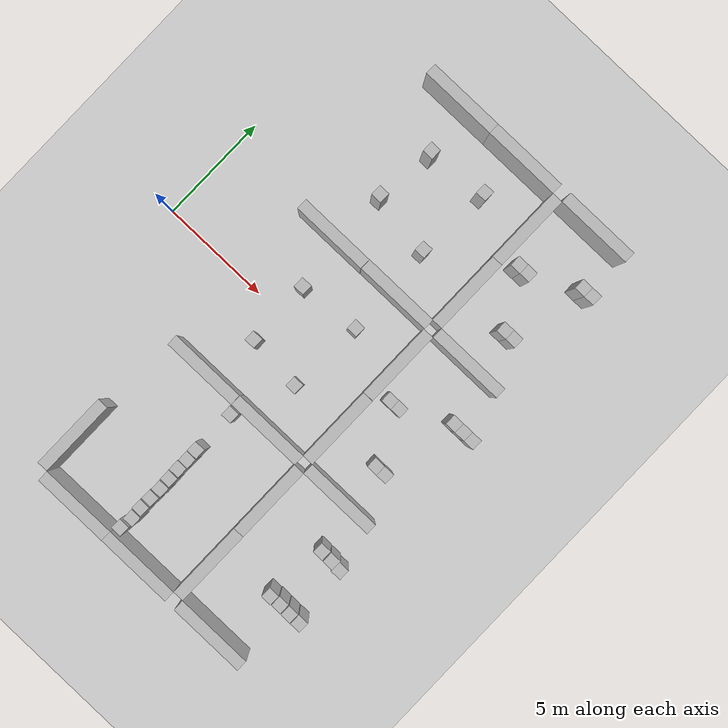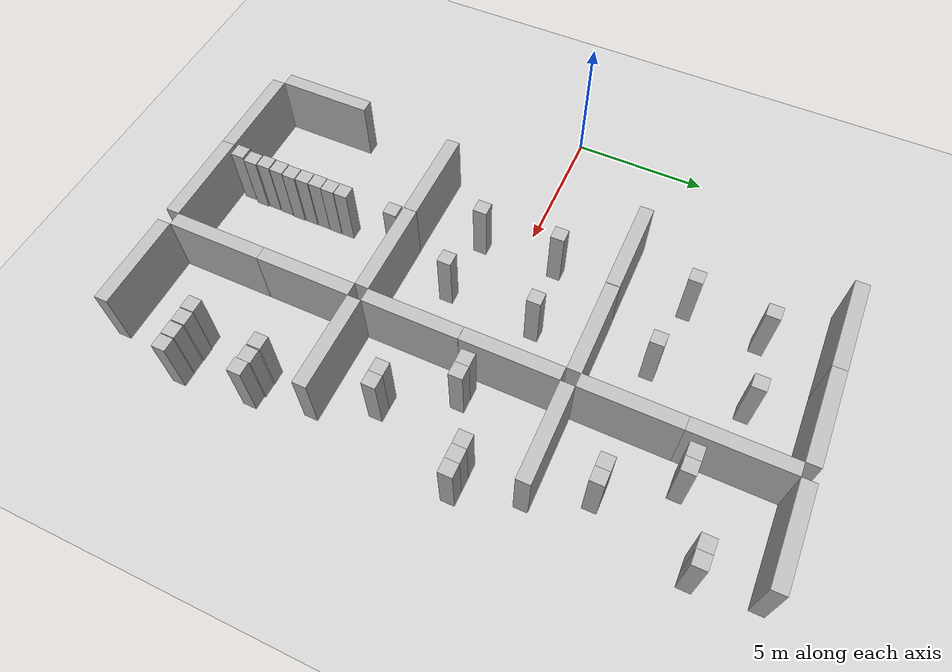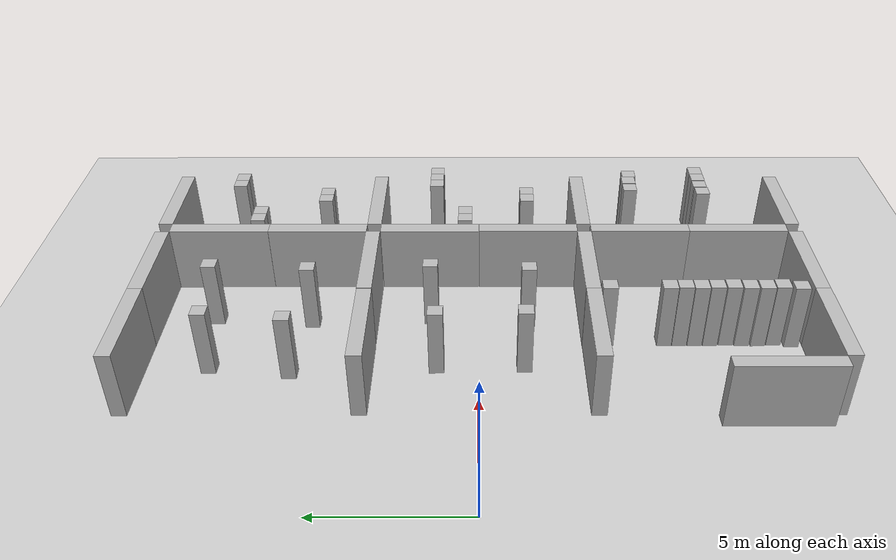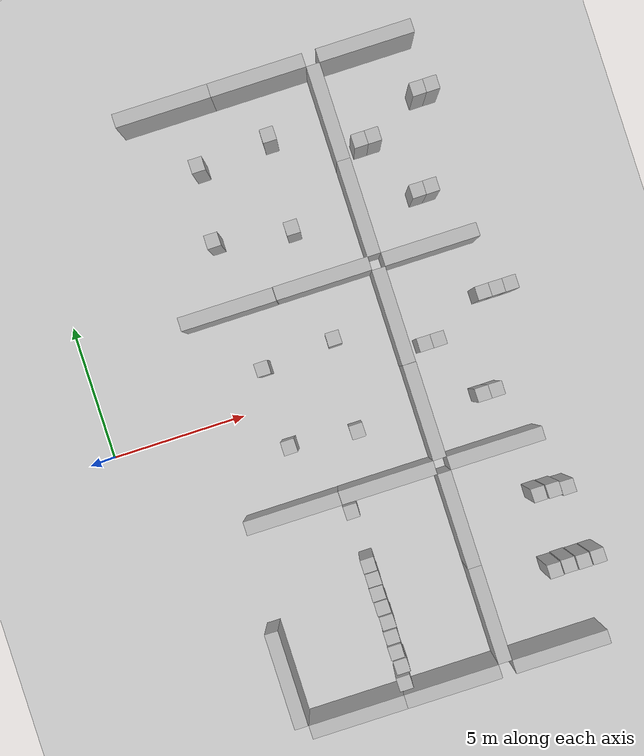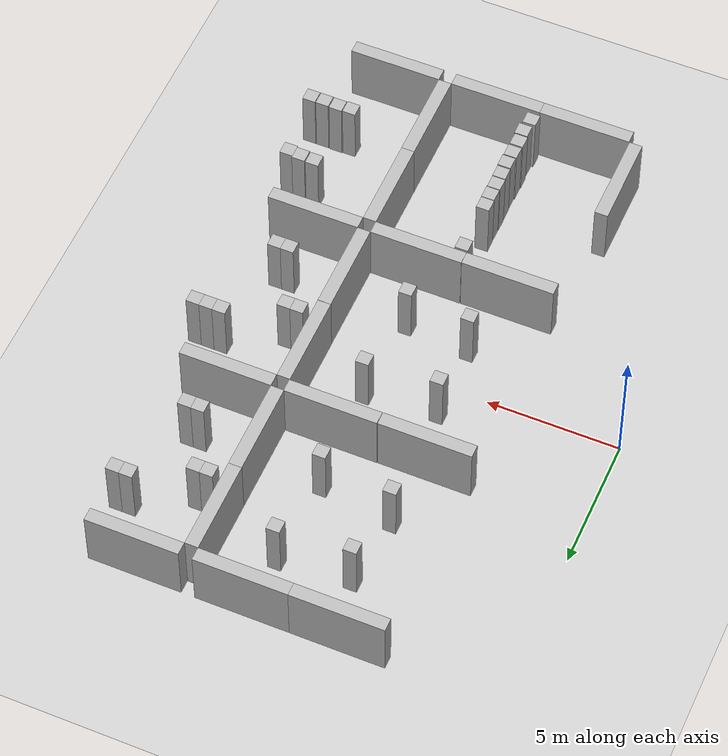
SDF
<sdf version="1.6">
 <world name="default">
  <model name="ground_plane">
   <static>1</static>
   <link name="link">
    <collision name="collision">
     <geometry><plane><normal>0 0 1</normal><size>100 100</size></plane></geometry>
     <surface><friction><ode><mu>100</mu><mu2>50</mu2></ode></friction></surface>
    </collision>
    <visual name="visual">
     <cast_shadows>0</cast_shadows>
     <geometry><plane><normal>0 0 1</normal><size>100 100</size></plane></geometry>
     <material>
      <script><uri>file://media/materials/scripts/gazebo.material</uri><name>Gazebo/Grey</name></script>
     </material>
    </visual>
   </link>
  </model>
  <model name="mywall0_4_clone_0_clone">
   <static>1</static>
   <link name="link">
    <pose>0 0 1.4 0 -0 0</pose>
    <collision name="collision"><geometry><box><size>3.5 0.5 2.4</size></box></geometry></collision>
    <visual name="visual">
     <cast_shadows>0</cast_shadows>
     <geometry><box><size>3.5 0.5 2.4</size></box></geometry>
     <material>
      <script>
       <uri>model://mywall0/materials/scripts</uri>
       <uri>model://mywall0/materials/textures</uri>
       <name>vrc/mywall0</name>
      </script>
     </material>
    </visual>
   </link>
   <pose>11.25 1.75 0 0 -0 1.57</pose>
  </model>
  <model name="mywall0_1_clone">
   <static>1</static>
   <link name="link">
    <pose>0 0 1.4 0 -0 0</pose>
    <collision name="collision"><geometry><box><size>3.5 0.5 2.4</size></box></geometry></collision>
    <visual name="visual">
     <cast_shadows>0</cast_shadows>
     <geometry><box><size>3.5 0.5 2.4</size></box></geometry>
     <material>
      <script>
       <uri>model://mywall0/materials/scripts</uri>
       <uri>model://mywall0/materials/textures</uri>
       <name>vrc/mywall0</name>
      </script>
     </material>
    </visual>
   </link>
   <pose>5.7511 3.75831 0 0 -0 0</pose>
  </model>
  <model name="mywall0_1_clone_0">
   <static>1</static>
   <link name="link">
    <pose>0 0 1.4 0 -0 0</pose>
    <collision name="collision"><geometry><box><size>3.5 0.5 2.4</size></box></geometry></collision>
    <visual name="visual">
     <cast_shadows>0</cast_shadows>
     <geometry><box><size>3.5 0.5 2.4</size></box></geometry>
     <material>
      <script>
       <uri>model://mywall0/materials/scripts</uri>
       <uri>model://mywall0/materials/textures</uri>
       <name>vrc/mywall0</name>
      </script>
     </material>
    </visual>
   </link>
   <pose>9.26518 3.76712 0 0 -0 0</pose>
  </model>
  <model name="mywall0_4_clone_0_clone_clone">
   <static>1</static>
   <link name="link">
    <pose>0 0 1.4 0 -0 0</pose>
    <collision name="collision"><geometry><box><size>3.5 0.5 2.4</size></box></geometry></collision>
    <visual name="visual">
     <cast_shadows>0</cast_shadows>
     <geometry><box><size>3.5 0.5 2.4</size></box></geometry>
     <material>
      <script>
       <uri>model://mywall0/materials/scripts</uri>
       <uri>model://mywall0/materials/textures</uri>
       <name>vrc/mywall0</name>
      </script>
     </material>
    </visual>
   </link>
   <pose>11.2541 -1.75467 0 0 -0 1.57</pose>
  </model>
  <model name="mywall0_3_clone">
   <static>1</static>
   <link name="link">
    <pose>0 0 1.4 0 -0 0</pose>
    <collision name="collision"><geometry><box><size>3.5 0.5 2.4</size></box></geometry></collision>
    <visual name="visual">
     <cast_shadows>0</cast_shadows>
     <geometry><box><size>3.5 0.5 2.4</size></box></geometry>
     <material>
      <script>
       <uri>model://mywall0/materials/scripts</uri>
       <uri>model://mywall0/materials/textures</uri>
       <name>vrc/mywall0</name>
      </script>
     </material>
    </visual>
   </link>
   <pose>5.75 -3.75829 0 0 -0 0</pose>
  </model>
  <model name="mywall0_3_clone_0">
   <static>1</static>
   <link name="link">
    <pose>0 0 1.4 0 -0 0</pose>
    <collision name="collision"><geometry><box><size>3.5 0.5 2.4</size></box></geometry></collision>
    <visual name="visual">
     <cast_shadows>0</cast_shadows>
     <geometry><box><size>3.5 0.5 2.4</size></box></geometry>
     <material>
      <script>
       <uri>model://mywall0/materials/scripts</uri>
       <uri>model://mywall0/materials/textures</uri>
       <name>vrc/mywall0</name>
      </script>
     </material>
    </visual>
   </link>
   <pose>9.25625 -3.75 0 0 -0 0</pose>
  </model>
  <model name="mywall0_1_clone_1">
   <static>1</static>
   <link name="link">
    <pose>0 0 1.4 0 -0 0</pose>
    <collision name="collision"><geometry><box><size>3.5 0.5 2.4</size></box></geometry></collision>
    <visual name="visual">
     <cast_shadows>0</cast_shadows>
     <geometry><box><size>3.5 0.5 2.4</size></box></geometry>
     <material>
      <script>
       <uri>model://mywall0/materials/scripts</uri>
       <uri>model://mywall0/materials/textures</uri>
       <name>vrc/mywall0</name>
      </script>
     </material>
    </visual>
   </link>
   <pose>13.25 3.75 0 0 -0 0</pose>
  </model>
  <model name="mywall0_1_clone_1_clone">
   <static>1</static>
   <link name="link">
    <pose>0 0 1.4 0 -0 0</pose>
    <collision name="collision"><geometry><box><size>3.5 0.5 2.4</size></box></geometry></collision>
    <visual name="visual">
     <cast_shadows>0</cast_shadows>
     <geometry><box><size>3.5 0.5 2.4</size></box></geometry>
     <material>
      <script>
       <uri>model://mywall0/materials/scripts</uri>
       <uri>model://mywall0/materials/textures</uri>
       <name>vrc/mywall0</name>
      </script>
     </material>
    </visual>
   </link>
   <pose>13.25 -3.75 0 0 -0 0</pose>
  </model>
  <model name="mywall0_4_clone_0_clone_clone_0_clone_6">
   <static>1</static>
   <link name="link">
    <pose>0 0 1.4 0 -0 0</pose>
    <collision name="collision"><geometry><box><size>3.5 0.5 2.4</size></box></geometry></collision>
    <visual name="visual">
     <cast_shadows>0</cast_shadows>
     <geometry><box><size>3.5 0.5 2.4</size></box></geometry>
     <material>
      <script>
       <uri>model://mywall0/materials/scripts</uri>
       <uri>model://mywall0/materials/textures</uri>
       <name>vrc/mywall0</name>
      </script>
     </material>
    </visual>
   </link>
   <pose>11.25 5.75 0 0 -0 1.57</pose>
  </model>
  <model name="mywall0_4_clone_0_clone_clone_0_clone_7">
   <static>1</static>
   <link name="link">
    <pose>0 0 1.4 0 -0 0</pose>
    <collision name="collision"><geometry><box><size>3.5 0.5 2.4</size></box></geometry></collision>
    <visual name="visual">
     <cast_shadows>0</cast_shadows>
     <geometry><box><size>3.5 0.5 2.4</size></box></geometry>
     <material>
      <script>
       <uri>model://mywall0/materials/scripts</uri>
       <uri>model://mywall0/materials/textures</uri>
       <name>vrc/mywall0</name>
      </script>
     </material>
    </visual>
   </link>
   <pose>11.25 9.25 0 0 -0 1.57</pose>
  </model>
  <model name="mywall0_1_clone_1_clone_3_clone_2">
   <static>1</static>
   <link name="link">
    <pose>0 0 1.4 0 -0 0</pose>
    <collision name="collision"><geometry><box><size>3.5 0.5 2.4</size></box></geometry></collision>
    <visual name="visual">
     <cast_shadows>0</cast_shadows>
     <geometry><box><size>3.5 0.5 2.4</size></box></geometry>
     <material>
      <script>
       <uri>model://mywall0/materials/scripts</uri>
       <uri>model://mywall0/materials/textures</uri>
       <name>vrc/mywall0</name>
      </script>
     </material>
    </visual>
   </link>
   <pose>13.25 11.25 0 0 -0 0</pose>
  </model>
  <model name="mywall0_1_clone_1_clone_3_clone_3">
   <static>1</static>
   <link name="link">
    <pose>0 0 1.4 0 -0 0</pose>
    <collision name="collision"><geometry><box><size>3.5 0.5 2.4</size></box></geometry></collision>
    <visual name="visual">
     <cast_shadows>0</cast_shadows>
     <geometry><box><size>3.5 0.5 2.4</size></box></geometry>
     <material>
      <script>
       <uri>model://mywall0/materials/scripts</uri>
       <uri>model://mywall0/materials/textures</uri>
       <name>vrc/mywall0</name>
      </script>
     </material>
    </visual>
   </link>
   <pose>9.25 11.25 0 0 -0 0</pose>
  </model>
  <model name="mywall0_1_clone_1_clone_3_clone_4">
   <static>1</static>
   <link name="link">
    <pose>0 0 1.4 0 -0 0</pose>
    <collision name="collision"><geometry><box><size>3.5 0.5 2.4</size></box></geometry></collision>
    <visual name="visual">
     <cast_shadows>0</cast_shadows>
     <geometry><box><size>3.5 0.5 2.4</size></box></geometry>
     <material>
      <script>
       <uri>model://mywall0/materials/scripts</uri>
       <uri>model://mywall0/materials/textures</uri>
       <name>vrc/mywall0</name>
      </script>
     </material>
    </visual>
   </link>
   <pose>5.75 11.25 0 0 -0 0</pose>
  </model>
  <model name="mypillar">
   <static>1</static>
   <link name="link">
    <pose>0 0 1.4 0 -0 0</pose>
    <collision name="collision"><geometry><box><size>0.5 0.5 2.4</size></box></geometry></collision>
    <visual name="visual">
     <cast_shadows>0</cast_shadows>
     <geometry><box><size>0.5 0.5 2.4</size></box></geometry>
     <material>
      <script>
       <uri>model://mypillar/materials/scripts</uri>
       <uri>model://mypillar/materials/textures</uri>
       <name>vrc/mypillar</name>
      </script>
     </material>
    </visual>
   </link>
   <pose>6.3 1.4 0 0 -0 0</pose>
  </model>
  <model name="mypillar_0">
   <static>1</static>
   <link name="link">
    <pose>0 0 1.4 0 -0 0</pose>
    <collision name="collision"><geometry><box><size>0.5 0.5 2.4</size></box></geometry></collision>
    <visual name="visual">
     <cast_shadows>0</cast_shadows>
     <geometry><box><size>0.5 0.5 2.4</size></box></geometry>
     <material>
      <script>
       <uri>model://mypillar/materials/scripts</uri>
       <uri>model://mypillar/materials/textures</uri>
       <name>vrc/mypillar</name>
      </script>
     </material>
    </visual>
   </link>
   <pose>8.8 -1.7 0 0 -0 0</pose>
  </model>
  <model name="mypillar_1">
   <static>1</static>
   <link name="link">
    <pose>0 0 1.4 0 -0 0</pose>
    <collision name="collision"><geometry><box><size>0.5 0.5 2.4</size></box></geometry></collision>
    <visual name="visual">
     <cast_shadows>0</cast_shadows>
     <geometry><box><size>0.5 0.5 2.4</size></box></geometry>
     <material>
      <script>
       <uri>model://mypillar/materials/scripts</uri>
       <uri>model://mypillar/materials/textures</uri>
       <name>vrc/mypillar</name>
      </script>
     </material>
    </visual>
   </link>
   <pose>9 1.65 0 0 -0 0</pose>
  </model>
  <model name="mypillar_clone">
   <static>1</static>
   <link name="link">
    <pose>0 0 1.4 0 -0 0</pose>
    <collision name="collision"><geometry><box><size>0.5 0.5 2.4</size></box></geometry></collision>
    <visual name="visual">
     <cast_shadows>0</cast_shadows>
     <geometry><box><size>0.5 0.5 2.4</size></box></geometry>
     <material>
      <script>
       <uri>model://mypillar/materials/scripts</uri>
       <uri>model://mypillar/materials/textures</uri>
       <name>vrc/mypillar</name>
      </script>
     </material>
    </visual>
   </link>
   <pose>6.35 -1.5 0 0 -0 0</pose>
  </model>
  <model name="mypillar_1_clone_clone">
   <static>1</static>
   <link name="link">
    <pose>0 0 1.4 0 -0 0</pose>
    <collision name="collision"><geometry><box><size>0.5 0.5 2.4</size></box></geometry></collision>
    <visual name="visual">
     <cast_shadows>0</cast_shadows>
     <geometry><box><size>0.5 0.5 2.4</size></box></geometry>
     <material>
      <script>
       <uri>model://mypillar/materials/scripts</uri>
       <uri>model://mypillar/materials/textures</uri>
       <name>vrc/mypillar</name>
      </script>
     </material>
    </visual>
   </link>
   <pose>15 1.6 0 0 -0 0</pose>
  </model>
  <model name="mypillar_1_clone_clone_0">
   <static>1</static>
   <link name="link">
    <pose>0 0 1.4 0 -0 0</pose>
    <collision name="collision"><geometry><box><size>0.5 0.5 2.4</size></box></geometry></collision>
    <visual name="visual">
     <cast_shadows>0</cast_shadows>
     <geometry><box><size>0.5 0.5 2.4</size></box></geometry>
     <material>
      <script>
       <uri>model://mypillar/materials/scripts</uri>
       <uri>model://mypillar/materials/textures</uri>
       <name>vrc/mypillar</name>
      </script>
     </material>
    </visual>
   </link>
   <pose>15.5 1.6 0 0 -0 0</pose>
  </model>
  <model name="mypillar_1_clone_clone_1">
   <static>1</static>
   <link name="link">
    <pose>0 0 1.4 0 -0 0</pose>
    <collision name="collision"><geometry><box><size>0.5 0.5 2.4</size></box></geometry></collision>
    <visual name="visual">
     <cast_shadows>0</cast_shadows>
     <geometry><box><size>0.5 0.5 2.4</size></box></geometry>
     <material>
      <script>
       <uri>model://mypillar/materials/scripts</uri>
       <uri>model://mypillar/materials/textures</uri>
       <name>vrc/mypillar</name>
      </script>
     </material>
    </visual>
   </link>
   <pose>14.5 1.6 0 0 -0 0</pose>
  </model>
  <model name="mypillar_1_clone_clone_2">
   <static>1</static>
   <link name="link">
    <pose>0 0 1.4 0 -0 0</pose>
    <collision name="collision"><geometry><box><size>0.5 0.5 2.4</size></box></geometry></collision>
    <visual name="visual">
     <cast_shadows>0</cast_shadows>
     <geometry><box><size>0.5 0.5 2.4</size></box></geometry>
     <material>
      <script>
       <uri>model://mypillar/materials/scripts</uri>
       <uri>model://mypillar/materials/textures</uri>
       <name>vrc/mypillar</name>
      </script>
     </material>
    </visual>
   </link>
   <pose>13.4 -1.8 0 0 -0 0</pose>
  </model>
  <model name="mypillar_1_clone_clone_3">
   <static>1</static>
   <link name="link">
    <pose>0 0 1.4 0 -0 0</pose>
    <collision name="collision"><geometry><box><size>0.5 0.5 2.4</size></box></geometry></collision>
    <visual name="visual">
     <cast_shadows>0</cast_shadows>
     <geometry><box><size>0.5 0.5 2.4</size></box></geometry>
     <material>
      <script>
       <uri>model://mypillar/materials/scripts</uri>
       <uri>model://mypillar/materials/textures</uri>
       <name>vrc/mypillar</name>
      </script>
     </material>
    </visual>
   </link>
   <pose>13.9 -1.8 0 0 -0 0</pose>
  </model>
  <model name="mypillar_1_clone_clone_4_clone_2">
   <static>1</static>
   <link name="link">
    <pose>0 0 1.4 0 -0 0</pose>
    <collision name="collision"><geometry><box><size>0.5 0.5 2.4</size></box></geometry></collision>
    <visual name="visual">
     <cast_shadows>0</cast_shadows>
     <geometry><box><size>0.5 0.5 2.4</size></box></geometry>
     <material>
      <script>
       <uri>model://mypillar/materials/scripts</uri>
       <uri>model://mypillar/materials/textures</uri>
       <name>vrc/mypillar</name>
      </script>
     </material>
    </visual>
   </link>
   <pose>12 0.5 0 0 -0 0</pose>
  </model>
  <model name="mypillar_1_clone_clone_4_clone_3">
   <static>1</static>
   <link name="link">
    <pose>0 0 1.4 0 -0 0</pose>
    <collision name="collision"><geometry><box><size>0.5 0.5 2.4</size></box></geometry></collision>
    <visual name="visual">
     <cast_shadows>0</cast_shadows>
     <geometry><box><size>0.5 0.5 2.4</size></box></geometry>
     <material>
      <script>
       <uri>model://mypillar/materials/scripts</uri>
       <uri>model://mypillar/materials/textures</uri>
       <name>vrc/mypillar</name>
      </script>
     </material>
    </visual>
   </link>
   <pose>12.5 0.5 0 0 -0 0</pose>
  </model>
  <model name="mypillar_clone_0_clone_1_clone">
   <static>1</static>
   <link name="link">
    <pose>0 0 1.4 0 -0 0</pose>
    <collision name="collision"><geometry><box><size>0.5 0.5 2.4</size></box></geometry></collision>
    <visual name="visual">
     <cast_shadows>0</cast_shadows>
     <geometry><box><size>0.5 0.5 2.4</size></box></geometry>
     <material>
      <script>
       <uri>model://mypillar/materials/scripts</uri>
       <uri>model://mypillar/materials/textures</uri>
       <name>vrc/mypillar</name>
      </script>
     </material>
    </visual>
   </link>
   <pose>6.3 8.9 0 0 -0 0</pose>
  </model>
  <model name="mypillar_clone_0_clone_1_clone_0">
   <static>1</static>
   <link name="link">
    <pose>0 0 1.4 0 -0 0</pose>
    <collision name="collision"><geometry><box><size>0.5 0.5 2.4</size></box></geometry></collision>
    <visual name="visual">
     <cast_shadows>0</cast_shadows>
     <geometry><box><size>0.5 0.5 2.4</size></box></geometry>
     <material>
      <script>
       <uri>model://mypillar/materials/scripts</uri>
       <uri>model://mypillar/materials/textures</uri>
       <name>vrc/mypillar</name>
      </script>
     </material>
    </visual>
   </link>
   <pose>6.00869 6.21238 0 0 -0 0</pose>
  </model>
  <model name="mypillar_clone_0_clone_1_clone_1">
   <static>1</static>
   <link name="link">
    <pose>0 0 1.4 0 -0 0</pose>
    <collision name="collision"><geometry><box><size>0.5 0.5 2.4</size></box></geometry></collision>
    <visual name="visual">
     <cast_shadows>0</cast_shadows>
     <geometry><box><size>0.5 0.5 2.4</size></box></geometry>
     <material>
      <script>
       <uri>model://mypillar/materials/scripts</uri>
       <uri>model://mypillar/materials/textures</uri>
       <name>vrc/mypillar</name>
      </script>
     </material>
    </visual>
   </link>
   <pose>9 9.15 0 0 -0 0</pose>
  </model>
  <model name="mypillar_clone_0_clone_1_clone_2">
   <static>1</static>
   <link name="link">
    <pose>0 0 1.4 0 -0 0</pose>
    <collision name="collision"><geometry><box><size>0.5 0.5 2.4</size></box></geometry></collision>
    <visual name="visual">
     <cast_shadows>0</cast_shadows>
     <geometry><box><size>0.5 0.5 2.4</size></box></geometry>
     <material>
      <script>
       <uri>model://mypillar/materials/scripts</uri>
       <uri>model://mypillar/materials/textures</uri>
       <name>vrc/mypillar</name>
      </script>
     </material>
    </visual>
   </link>
   <pose>8.8 5.8 0 0 -0 0</pose>
  </model>
  <model name="mypillar_1_clone_clone_4_clone_2_clone">
   <static>1</static>
   <link name="link">
    <pose>0 0 1.4 0 -0 0</pose>
    <collision name="collision"><geometry><box><size>0.5 0.5 2.4</size></box></geometry></collision>
    <visual name="visual">
     <cast_shadows>0</cast_shadows>
     <geometry><box><size>0.5 0.5 2.4</size></box></geometry>
     <material>
      <script>
       <uri>model://mypillar/materials/scripts</uri>
       <uri>model://mypillar/materials/textures</uri>
       <name>vrc/mypillar</name>
      </script>
     </material>
    </visual>
   </link>
   <pose>12 8 0 0 -0 0</pose>
  </model>
  <model name="mypillar_1_clone_clone_4_clone_2_clone_0">
   <static>1</static>
   <link name="link">
    <pose>0 0 1.4 0 -0 0</pose>
    <collision name="collision"><geometry><box><size>0.5 0.5 2.4</size></box></geometry></collision>
    <visual name="visual">
     <cast_shadows>0</cast_shadows>
     <geometry><box><size>0.5 0.5 2.4</size></box></geometry>
     <material>
      <script>
       <uri>model://mypillar/materials/scripts</uri>
       <uri>model://mypillar/materials/textures</uri>
       <name>vrc/mypillar</name>
      </script>
     </material>
    </visual>
   </link>
   <pose>12.5 8 0 0 -0 0</pose>
  </model>
  <model name="mypillar_1_clone_clone_4_clone_2_clone_1">
   <static>1</static>
   <link name="link">
    <pose>0 0 1.4 0 -0 0</pose>
    <collision name="collision"><geometry><box><size>0.5 0.5 2.4</size></box></geometry></collision>
    <visual name="visual">
     <cast_shadows>0</cast_shadows>
     <geometry><box><size>0.5 0.5 2.4</size></box></geometry>
     <material>
      <script>
       <uri>model://mypillar/materials/scripts</uri>
       <uri>model://mypillar/materials/textures</uri>
       <name>vrc/mypillar</name>
      </script>
     </material>
    </visual>
   </link>
   <pose>14.5 9.1 0 0 -0 0</pose>
  </model>
  <model name="mypillar_1_clone_clone_4_clone_2_clone_2">
   <static>1</static>
   <link name="link">
    <pose>0 0 1.4 0 -0 0</pose>
    <collision name="collision"><geometry><box><size>0.5 0.5 2.4</size></box></geometry></collision>
    <visual name="visual">
     <cast_shadows>0</cast_shadows>
     <geometry><box><size>0.5 0.5 2.4</size></box></geometry>
     <material>
      <script>
       <uri>model://mypillar/materials/scripts</uri>
       <uri>model://mypillar/materials/textures</uri>
       <name>vrc/mypillar</name>
      </script>
     </material>
    </visual>
   </link>
   <pose>15 9.1 0 0 -0 0</pose>
  </model>
  <model name="mypillar_1_clone_clone_4_clone_2_clone_4">
   <static>1</static>
   <link name="link">
    <pose>0 0 1.4 0 -0 0</pose>
    <collision name="collision"><geometry><box><size>0.5 0.5 2.4</size></box></geometry></collision>
    <visual name="visual">
     <cast_shadows>0</cast_shadows>
     <geometry><box><size>0.5 0.5 2.4</size></box></geometry>
     <material>
      <script>
       <uri>model://mypillar/materials/scripts</uri>
       <uri>model://mypillar/materials/textures</uri>
       <name>vrc/mypillar</name>
      </script>
     </material>
    </visual>
   </link>
   <pose>13.4 5.7 0 0 -0 0</pose>
  </model>
  <model name="mypillar_1_clone_clone_4_clone_2_clone_5">
   <static>1</static>
   <link name="link">
    <pose>0 0 1.4 0 -0 0</pose>
    <collision name="collision"><geometry><box><size>0.5 0.5 2.4</size></box></geometry></collision>
    <visual name="visual">
     <cast_shadows>0</cast_shadows>
     <geometry><box><size>0.5 0.5 2.4</size></box></geometry>
     <material>
      <script>
       <uri>model://mypillar/materials/scripts</uri>
       <uri>model://mypillar/materials/textures</uri>
       <name>vrc/mypillar</name>
      </script>
     </material>
    </visual>
   </link>
   <pose>13.9 5.7 0 0 -0 0</pose>
  </model>
  <model name="mywall0_4_clone_1_clone_0">
   <static>1</static>
   <link name="link">
    <pose>0 0 1.4 0 -0 0</pose>
    <collision name="collision"><geometry><box><size>3.5 0.5 2.4</size></box></geometry></collision>
    <visual name="visual">
     <cast_shadows>0</cast_shadows>
     <geometry><box><size>3.5 0.5 2.4</size></box></geometry>
     <material>
      <script>
       <uri>model://mywall0/materials/scripts</uri>
       <uri>model://mywall0/materials/textures</uri>
       <name>vrc/mywall0</name>
      </script>
     </material>
    </visual>
   </link>
   <pose>3.75 -9.25 0 0 -0 1.57</pose>
  </model>
  <model name="mywall0_4_clone_1_clone_1">
   <static>1</static>
   <link name="link">
    <pose>0 0 1.4 0 -0 0</pose>
    <collision name="collision"><geometry><box><size>3.5 0.5 2.4</size></box></geometry></collision>
    <visual name="visual">
     <cast_shadows>0</cast_shadows>
     <geometry><box><size>3.5 0.5 2.4</size></box></geometry>
     <material>
      <script>
       <uri>model://mywall0/materials/scripts</uri>
       <uri>model://mywall0/materials/textures</uri>
       <name>vrc/mywall0</name>
      </script>
     </material>
    </visual>
   </link>
   <pose>11.25 -5.75 0 0 -0 1.57</pose>
  </model>
  <model name="mywall0_4_clone_1_clone_2">
   <static>1</static>
   <link name="link">
    <pose>0 0 1.4 0 -0 0</pose>
    <collision name="collision"><geometry><box><size>3.5 0.5 2.4</size></box></geometry></collision>
    <visual name="visual">
     <cast_shadows>0</cast_shadows>
     <geometry><box><size>3.5 0.5 2.4</size></box></geometry>
     <material>
      <script>
       <uri>model://mywall0/materials/scripts</uri>
       <uri>model://mywall0/materials/textures</uri>
       <name>vrc/mywall0</name>
      </script>
     </material>
    </visual>
   </link>
   <pose>11.25 -9.25 0 0 -0 1.57</pose>
  </model>
  <model name="mywall0_3_clone_0_clone">
   <static>1</static>
   <link name="link">
    <pose>0 0 1.4 0 -0 0</pose>
    <collision name="collision"><geometry><box><size>3.5 0.5 2.4</size></box></geometry></collision>
    <visual name="visual">
     <cast_shadows>0</cast_shadows>
     <geometry><box><size>3.5 0.5 2.4</size></box></geometry>
     <material>
      <script>
       <uri>model://mywall0/materials/scripts</uri>
       <uri>model://mywall0/materials/textures</uri>
       <name>vrc/mywall0</name>
      </script>
     </material>
    </visual>
   </link>
   <pose>5.7637 -11.25 0 0 -0 0</pose>
  </model>
  <model name="mywall0_3_clone_0_clone_0">
   <static>1</static>
   <link name="link">
    <pose>0 0 1.4 0 -0 0</pose>
    <collision name="collision"><geometry><box><size>3.5 0.5 2.4</size></box></geometry></collision>
    <visual name="visual">
     <cast_shadows>0</cast_shadows>
     <geometry><box><size>3.5 0.5 2.4</size></box></geometry>
     <material>
      <script>
       <uri>model://mywall0/materials/scripts</uri>
       <uri>model://mywall0/materials/textures</uri>
       <name>vrc/mywall0</name>
      </script>
     </material>
    </visual>
   </link>
   <pose>9.25 -11.25 0 0 -0 0</pose>
  </model>
  <model name="mywall0_3_clone_0_clone_0_clone">
   <static>1</static>
   <link name="link">
    <pose>0 0 1.4 0 -0 0</pose>
    <collision name="collision"><geometry><box><size>3.5 0.5 2.4</size></box></geometry></collision>
    <visual name="visual">
     <cast_shadows>0</cast_shadows>
     <geometry><box><size>3.5 0.5 2.4</size></box></geometry>
     <material>
      <script>
       <uri>model://mywall0/materials/scripts</uri>
       <uri>model://mywall0/materials/textures</uri>
       <name>vrc/mywall0</name>
      </script>
     </material>
    </visual>
   </link>
   <pose>13.25 -11.25 0 0 -0 0</pose>
  </model>
  <model name="mypillar_clone_clone_2_clone">
   <static>1</static>
   <link name="link">
    <pose>0 0 1.4 0 -0 0</pose>
    <collision name="collision"><geometry><box><size>0.5 0.5 2.4</size></box></geometry></collision>
    <visual name="visual">
     <cast_shadows>0</cast_shadows>
     <geometry><box><size>0.5 0.5 2.4</size></box></geometry>
     <material>
      <script>
       <uri>model://mypillar/materials/scripts</uri>
       <uri>model://mypillar/materials/textures</uri>
       <name>vrc/mypillar</name>
      </script>
     </material>
    </visual>
   </link>
   <pose>7.73456 -6.2969 0 0 -0 0</pose>
  </model>
  <model name="mypillar_clone_clone_2_clone_5">
   <static>1</static>
   <link name="link">
    <pose>0 0 1.4 0 -0 0</pose>
    <collision name="collision"><geometry><box><size>0.5 0.5 2.4</size></box></geometry></collision>
    <visual name="visual">
     <cast_shadows>0</cast_shadows>
     <geometry><box><size>0.5 0.5 2.4</size></box></geometry>
     <material>
      <script>
       <uri>model://mypillar/materials/scripts</uri>
       <uri>model://mypillar/materials/textures</uri>
       <name>vrc/mypillar</name>
      </script>
     </material>
    </visual>
   </link>
   <pose>15.2275 -5.81819 0 0 -0 0</pose>
  </model>
  <model name="mypillar_clone_clone_2_clone_11">
   <static>1</static>
   <link name="link">
    <pose>0 0 1.4 0 -0 0</pose>
    <collision name="collision"><geometry><box><size>0.5 0.5 2.4</size></box></geometry></collision>
    <visual name="visual">
     <cast_shadows>0</cast_shadows>
     <geometry><box><size>0.5 0.5 2.4</size></box></geometry>
     <material>
      <script>
       <uri>model://mypillar/materials/scripts</uri>
       <uri>model://mypillar/materials/textures</uri>
       <name>vrc/mypillar</name>
      </script>
     </material>
    </visual>
   </link>
   <pose>15.4965 -8.45455 0 0 -0 0</pose>
  </model>
  <model name="mypillar_clone_clone_2_clone_clone">
   <static>1</static>
   <link name="link">
    <pose>0 0 1.4 0 -0 0</pose>
    <collision name="collision"><geometry><box><size>0.5 0.5 2.4</size></box></geometry></collision>
    <visual name="visual">
     <cast_shadows>0</cast_shadows>
     <geometry><box><size>0.5 0.5 2.4</size></box></geometry>
     <material>
      <script>
       <uri>model://mypillar/materials/scripts</uri>
       <uri>model://mypillar/materials/textures</uri>
       <name>vrc/mypillar</name>
      </script>
     </material>
    </visual>
   </link>
   <pose>7.74135 -4.32123 0 0 -0 0</pose>
  </model>
  <model name="mypillar_clone_clone_2_clone_clone_0">
   <static>1</static>
   <link name="link">
    <pose>0 0 1.4 0 -0 0</pose>
    <collision name="collision"><geometry><box><size>0.5 0.5 2.4</size></box></geometry></collision>
    <visual name="visual">
     <cast_shadows>0</cast_shadows>
     <geometry><box><size>0.5 0.5 2.4</size></box></geometry>
     <material>
      <script>
       <uri>model://mypillar/materials/scripts</uri>
       <uri>model://mypillar/materials/textures</uri>
       <name>vrc/mypillar</name>
      </script>
     </material>
    </visual>
   </link>
   <pose>7.74351 -6.81687 0 0 -0 0</pose>
  </model>
  <model name="mypillar_clone_clone_2_clone_clone_1">
   <static>1</static>
   <link name="link">
    <pose>0 0 1.4 0 -0 0</pose>
    <collision name="collision"><geometry><box><size>0.5 0.5 2.4</size></box></geometry></collision>
    <visual name="visual">
     <cast_shadows>0</cast_shadows>
     <geometry><box><size>0.5 0.5 2.4</size></box></geometry>
     <material>
      <script>
       <uri>model://mypillar/materials/scripts</uri>
       <uri>model://mypillar/materials/textures</uri>
       <name>vrc/mypillar</name>
      </script>
     </material>
    </visual>
   </link>
   <pose>7.73119 -7.33618 0 0 -0 0</pose>
  </model>
  <model name="mypillar_clone_clone_2_clone_clone_2">
   <static>1</static>
   <link name="link">
    <pose>0 0 1.4 0 -0 0</pose>
    <collision name="collision"><geometry><box><size>0.5 0.5 2.4</size></box></geometry></collision>
    <visual name="visual">
     <cast_shadows>0</cast_shadows>
     <geometry><box><size>0.5 0.5 2.4</size></box></geometry>
     <material>
      <script>
       <uri>model://mypillar/materials/scripts</uri>
       <uri>model://mypillar/materials/textures</uri>
       <name>vrc/mypillar</name>
      </script>
     </material>
    </visual>
   </link>
   <pose>7.74221 -7.86359 0 0 -0 0</pose>
  </model>
  <model name="mypillar_clone_clone_2_clone_clone_3">
   <static>1</static>
   <link name="link">
    <pose>0 0 1.4 0 -0 0</pose>
    <collision name="collision"><geometry><box><size>0.5 0.5 2.4</size></box></geometry></collision>
    <visual name="visual">
     <cast_shadows>0</cast_shadows>
     <geometry><box><size>0.5 0.5 2.4</size></box></geometry>
     <material>
      <script>
       <uri>model://mypillar/materials/scripts</uri>
       <uri>model://mypillar/materials/textures</uri>
       <name>vrc/mypillar</name>
      </script>
     </material>
    </visual>
   </link>
   <pose>7.76035 -8.4009 0 0 -0 0</pose>
  </model>
  <model name="mypillar_clone_clone_2_clone_clone_4">
   <static>1</static>
   <link name="link">
    <pose>0 0 1.4 0 -0 0</pose>
    <collision name="collision"><geometry><box><size>0.5 0.5 2.4</size></box></geometry></collision>
    <visual name="visual">
     <cast_shadows>0</cast_shadows>
     <geometry><box><size>0.5 0.5 2.4</size></box></geometry>
     <material>
      <script>
       <uri>model://mypillar/materials/scripts</uri>
       <uri>model://mypillar/materials/textures</uri>
       <name>vrc/mypillar</name>
      </script>
     </material>
    </visual>
   </link>
   <pose>7.73671 -8.9387 0 0 -0 0</pose>
  </model>
  <model name="mypillar_clone_clone_2_clone_clone_5">
   <static>1</static>
   <link name="link">
    <pose>0 0 1.4 0 -0 0</pose>
    <collision name="collision"><geometry><box><size>0.5 0.5 2.4</size></box></geometry></collision>
    <visual name="visual">
     <cast_shadows>0</cast_shadows>
     <geometry><box><size>0.5 0.5 2.4</size></box></geometry>
     <material>
      <script>
       <uri>model://mypillar/materials/scripts</uri>
       <uri>model://mypillar/materials/textures</uri>
       <name>vrc/mypillar</name>
      </script>
     </material>
    </visual>
   </link>
   <pose>7.72195 -9.48702 0 0 -0 0</pose>
  </model>
  <model name="mypillar_clone_clone_2_clone_clone_6">
   <static>1</static>
   <link name="link">
    <pose>0 0 1.4 0 -0 0</pose>
    <collision name="collision"><geometry><box><size>0.5 0.5 2.4</size></box></geometry></collision>
    <visual name="visual">
     <cast_shadows>0</cast_shadows>
     <geometry><box><size>0.5 0.5 2.4</size></box></geometry>
     <material>
      <script>
       <uri>model://mypillar/materials/scripts</uri>
       <uri>model://mypillar/materials/textures</uri>
       <name>vrc/mypillar</name>
      </script>
     </material>
    </visual>
   </link>
   <pose>7.75486 -10.0211 0 0 -0 0</pose>
  </model>
  <model name="mypillar_clone_clone_2_clone_clone_7">
   <static>1</static>
   <link name="link">
    <pose>0 0 1.4 0 -0 0</pose>
    <collision name="collision"><geometry><box><size>0.5 0.5 2.4</size></box></geometry></collision>
    <visual name="visual">
     <cast_shadows>0</cast_shadows>
     <geometry><box><size>0.5 0.5 2.4</size></box></geometry>
     <material>
      <script>
       <uri>model://mypillar/materials/scripts</uri>
       <uri>model://mypillar/materials/textures</uri>
       <name>vrc/mypillar</name>
      </script>
     </material>
    </visual>
   </link>
   <pose>7.67601 -10.6134 0 0 -0 0</pose>
  </model>
  <model name="mypillar_clone_clone_2_clone_clone_9">
   <static>1</static>
   <link name="link">
    <pose>0 0 1.4 0 -0 0</pose>
    <collision name="collision"><geometry><box><size>0.5 0.5 2.4</size></box></geometry></collision>
    <visual name="visual">
     <cast_shadows>0</cast_shadows>
     <geometry><box><size>0.5 0.5 2.4</size></box></geometry>
     <material>
      <script>
       <uri>model://mypillar/materials/scripts</uri>
       <uri>model://mypillar/materials/textures</uri>
       <name>vrc/mypillar</name>
      </script>
     </material>
    </visual>
   </link>
   <pose>14.9695 -8.45639 0 0 -0 0</pose>
  </model>
  <model name="mypillar_clone_clone_2_clone_clone_10">
   <static>1</static>
   <link name="link">
    <pose>0 0 1.4 0 -0 0</pose>
    <collision name="collision"><geometry><box><size>0.5 0.5 2.4</size></box></geometry></collision>
    <visual name="visual">
     <cast_shadows>0</cast_shadows>
     <geometry><box><size>0.5 0.5 2.4</size></box></geometry>
     <material>
      <script>
       <uri>model://mypillar/materials/scripts</uri>
       <uri>model://mypillar/materials/textures</uri>
       <name>vrc/mypillar</name>
      </script>
     </material>
    </visual>
   </link>
   <pose>14.4324 -8.44333 0 0 -0 0</pose>
  </model>
  <model name="mypillar_clone_clone_2_clone_clone_11">
   <static>1</static>
   <link name="link">
    <pose>0 0 1.4 0 -0 0</pose>
    <collision name="collision"><geometry><box><size>0.5 0.5 2.4</size></box></geometry></collision>
    <visual name="visual">
     <cast_shadows>0</cast_shadows>
     <geometry><box><size>0.5 0.5 2.4</size></box></geometry>
     <material>
      <script>
       <uri>model://mypillar/materials/scripts</uri>
       <uri>model://mypillar/materials/textures</uri>
       <name>vrc/mypillar</name>
      </script>
     </material>
    </visual>
   </link>
   <pose>13.9076 -8.46593 0 0 -0 0</pose>
  </model>
  <model name="mypillar_clone_clone_2_clone_clone_12">
   <static>1</static>
   <link name="link">
    <pose>0 0 1.4 0 -0 0</pose>
    <collision name="collision"><geometry><box><size>0.5 0.5 2.4</size></box></geometry></collision>
    <visual name="visual">
     <cast_shadows>0</cast_shadows>
     <geometry><box><size>0.5 0.5 2.4</size></box></geometry>
     <material>
      <script>
       <uri>model://mypillar/materials/scripts</uri>
       <uri>model://mypillar/materials/textures</uri>
       <name>vrc/mypillar</name>
      </script>
     </material>
    </visual>
   </link>
   <pose>14.7266 -5.76422 0 0 -0 0</pose>
  </model>
  <model name="mypillar_clone_clone_2_clone_clone_13">
   <static>1</static>
   <link name="link">
    <pose>0 0 1.4 0 -0 0</pose>
    <collision name="collision"><geometry><box><size>0.5 0.5 2.4</size></box></geometry></collision>
    <visual name="visual">
     <cast_shadows>0</cast_shadows>
     <geometry><box><size>0.5 0.5 2.4</size></box></geometry>
     <material>
      <script>
       <uri>model://mypillar/materials/scripts</uri>
       <uri>model://mypillar/materials/textures</uri>
       <name>vrc/mypillar</name>
      </script>
     </material>
    </visual>
   </link>
   <pose>14.1854 -5.75071 0 0 -0 0</pose>
  </model>
 </world>
</sdf>
